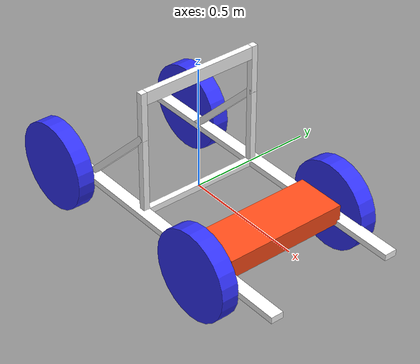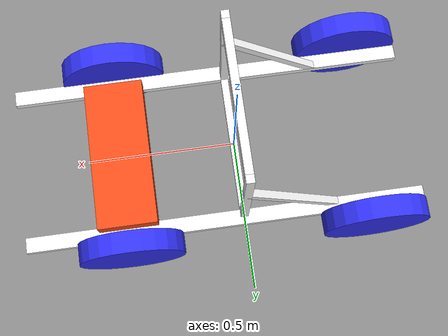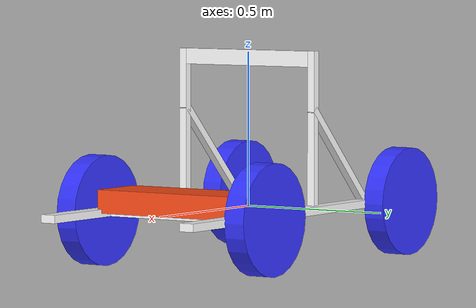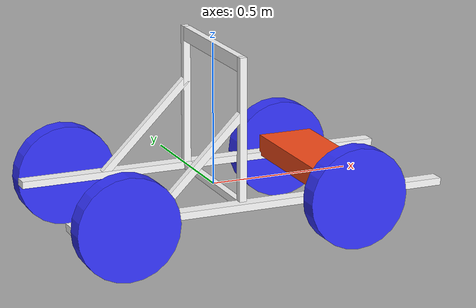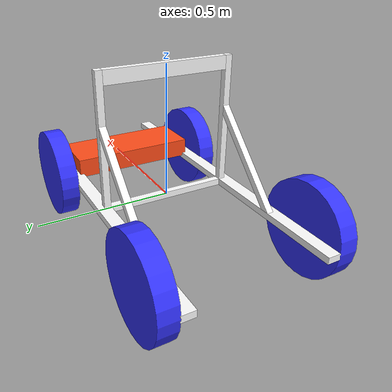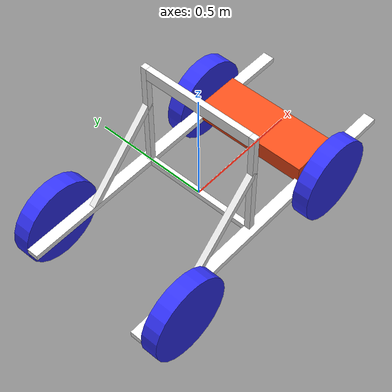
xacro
<?xml version="1.0"?>
<robot xmlns:xacro="http://www.ros.org/wiki/xacro" >

    <xacro:include filename="inertial_macros.xacro"/>

    <xacro:property name="chassis_length" value="1.3501" />
    <xacro:property name="chassis_to_base_link" value="0.73595" />
    <xacro:property name="profile_height" value="0.0254" />
    <xacro:property name="profile_width" value="0.0254" />
    <xacro:property name="tower_height" value="0.508" />

    <xacro:property name="wheel_radius" value="0.1778" />
    <xacro:property name="wheel_thickness" value="0.07" />
    <xacro:property name="wheel_mass" value="0.05" />

    <xacro:property name="front_wheel_offset_x" value="0.3876" />
    <xacro:property name="back_wheel_offset_x" value="0.437" />

    <xacro:property name="wheel_offset_y" value="0.3182" />
    <xacro:property name="wheel_offset_z" value="0.1778" />
    <xacro:property name="caster_wheel_mass" value="0.01"/>

    <material name="white">
        <color rgba="1 1 1 1" />
    </material>

    <material name="orange">
        <color rgba="1 0.3 0.1 1"/>
    </material>

    <material name="blue">
        <color rgba="0.2 0.2 1 1"/>
    </material>

    <material name="black">
        <color rgba="0 0 0 1"/>
    </material>

    <material name="red">
        <color rgba="1 0 0 1"/>
    </material>

    <!-- BASE LINK -->

    <link name="base_link">

    </link>

    <!-- BASE_FOOTPRINT LINK -->

    <joint name="base_footprint_joint" type="fixed">
    	<parent link="base_link"/>
    	<child link="base_footprint"/>
    	<origin xyz="0 0 0" rpy="0 0 0"/>
    </joint>

    <link name="base_footprint">
    </link>

    <!-- CHASSIS LONG BASE LEFT -->
    <!-- Needs to be 1.35m long, to the left by 0.2604m -->

    <joint name="chassis_base_left" type="fixed">
        <parent link="base_link"/>
        <child link="chassis_base_left"/>
        <origin xyz="${chassis_to_base_link} -0.2604 0"/>
    </joint>

    <link name="chassis_base_left">
        <visual>
            <origin xyz="${-chassis_length/2} 0 0"/>
            <geometry>
                <box size="${chassis_length} 0.0508 ${profile_height}"/>
            </geometry>
            <material name="white"/>
        </visual>
        <collision>
            <origin xyz="${-chassis_length/2} 0 0"/>
            <geometry>
                <box size="${chassis_length} 0.0508 ${profile_height}"/>
            </geometry>
        </collision>
        <xacro:inertial_box mass="0.5" x="${-chassis_length}" y="0.0508" z="${profile_height}">
            <origin xyz="${chassis_length/2} 0 0" rpy="0 0 0"/>
        </xacro:inertial_box>
    </link>

    <gazebo reference="chassis_base_left">
        <material>Gazebo/White</material>
    </gazebo>

    <!-- CHASSIS LONG BASE RIGHT -->
    <!-- Needs to be 1.35m long, to the left by  -->

    <joint name="chassis_base_right" type="fixed">
        <parent link="base_link"/>
        <child link="chassis_base_right"/>
        <origin xyz="${chassis_to_base_link} 0.2604 0"/>
    </joint>

    <link name="chassis_base_right">
        <visual>
            <origin xyz="${-chassis_length/2} 0 0"/>
            <geometry>
                <box size="${chassis_length} 0.0508 ${profile_height}"/>
            </geometry>
            <material name="white"/>
        </visual>
        <collision>
            <origin xyz="${-chassis_length/2} 0 0"/>
            <geometry>
                <box size="${chassis_length} 0.0508 ${profile_height}"/>
            </geometry>
        </collision>
        <xacro:inertial_box mass="0.5" x="${-chassis_length}" y="0.0508" z="${profile_height}">
            <origin xyz="${chassis_length/2} 0 0" rpy="0 0 0"/>
        </xacro:inertial_box>
    </link>

    <gazebo reference="chassis_base_right">
        <material>Gazebo/White</material>
    </gazebo>

    <!-- TOWER BASE -->

    <joint name="tower_base_" type="fixed">
        <parent link="base_link"/>
        <child link="tower_base"/>
        <origin xyz="0 0 0"/>
    </joint>

    <link name="tower_base">
        <visual>
            <origin xyz="0 0 0"/>
            <geometry>
                <box size="${profile_width} 0.4702 ${profile_height}"/>
            </geometry>
            <material name="white"/>
        </visual>
        <collision>
            <origin xyz="0 0 0"/>
            <geometry>
                <box size="${profile_width} 0.4702 ${profile_height}"/>
            </geometry>
        </collision>
        <xacro:inertial_box mass="0.5" x="${profile_width}" y="0.4702" z="${profile_height}">
            <origin xyz="0 0 0" rpy="0 0 0"/>
        </xacro:inertial_box>
    </link>

    <gazebo reference="tower_base">
        <material>Gazebo/White</material>
    </gazebo>

    <!-- TOWER HEIGHT LEFT -->
    <!-- Needs to be 0.510m tall -->

    <joint name="tower_up_left" type="fixed">
        <parent link="base_link"/>
        <child link="tower_up_left"/>
        <origin xyz="0 -0.2478 0"/>
    </joint>

    <link name="tower_up_left">
        <visual>
            <origin xyz="0 0 ${tower_height/2}"/>
            <geometry>
                <box size="${profile_width} ${profile_width} ${tower_height}"/>
            </geometry>
            <material name="white"/>
        </visual>
        <collision>
            <origin xyz="0 0 ${tower_height/2}"/>
            <geometry>
                <box size="${profile_width} ${profile_width} ${tower_height}"/>
            </geometry>
        </collision>
        <xacro:inertial_box mass="0.5" x="${profile_width}" y="${profile_width}" z="${tower_height}">
            <origin xyz="0 0 ${tower_height/2}" rpy="0 0 0"/>
        </xacro:inertial_box>
    </link>

    <gazebo reference="tower_up_left">
        <material>Gazebo/White</material>
    </gazebo>

    <!-- TOWER HEIGHT RIGHT-->
    <!-- Needs to be 0.510m tall -->

    <joint name="tower_up_right" type="fixed">
        <parent link="base_link"/>
        <child link="tower_up_right"/>
        <origin xyz="0 0.2478 0"/>
    </joint>

    <link name="tower_up_right">
        <visual>
            <origin xyz="0 0 ${tower_height/2}"/>
            <geometry>
                <box size="${profile_width} ${profile_width} ${tower_height}"/>
            </geometry>
            <material name="white"/>
        </visual>
        <collision>
            <origin xyz="0 0 ${tower_height/2}"/>
            <geometry>
                <box size="${profile_width} ${profile_width} ${tower_height}"/>
            </geometry>
        </collision>
        <xacro:inertial_box mass="0.5" x="${profile_width}" y="${profile_width}" z="${tower_height}">
            <origin xyz="0 0 ${tower_height/2}" rpy="0 0 0"/>
        </xacro:inertial_box>
    </link>

    <gazebo reference="tower_up_right">
        <material>Gazebo/White</material>
    </gazebo>

    <!-- TOWER TOP -->
    <!-- Needs to be 0.510m tall -->

    <joint name="tower_top" type="fixed">
        <parent link="base_link"/>
        <child link="tower_top"/>
        <origin xyz="0 0 ${tower_height-profile_width}"/>
    </joint>

    <link name="tower_top">
        <visual>
            <origin xyz="0 0 0"/>
            <geometry>
                <box size="${profile_width} 0.4702 ${profile_height*2}"/>
            </geometry>
            <material name="white"/>
        </visual>
        <collision>
            <origin xyz="0 0 0"/>
            <geometry>
                <box size="${profile_width} 0.4702 ${profile_height*2}"/>
            </geometry>
        </collision>
        <xacro:inertial_box mass="0.5" x="${profile_width}" y="0.4702" z="${profile_height*2}">
            <origin xyz="0 0 0" rpy="0 0 0"/>
        </xacro:inertial_box>
    </link>

    <!-- TOWER SUPPORT LEFT -->

    <joint name="tower_support_left" type="fixed">
        <parent link="base_link"/>
        <child link="tower_support_left"/>
        <origin xyz="-0.15635 -0.2478 0.160" rpy="0 ${-pi/4} 0"/>
        <axis xyz="1 0 0"/>
    </joint>

    <link name="tower_support_left">
        <visual>
            <origin xyz="0 0 0"/>
            <geometry>
                <box size="0.4572 ${profile_width} ${profile_height}"/>
            </geometry>
            <material name="white"/>
        </visual>
        <collision>
            <origin xyz="0 0 0"/>
            <geometry>
                <box size="0.4572 ${profile_width} ${profile_height}"/>
            </geometry>
        </collision>
        <xacro:inertial_box mass="0.5" x="0.4572" y="${profile_width}" z="${profile_height}">
            <origin xyz="0 0 0" rpy="0 0 0"/>
        </xacro:inertial_box>
    </link>

    <gazebo reference="tower_support_left">
        <material>Gazebo/White</material>
    </gazebo>

    <!-- TOWER SUPPORT RIGHT -->

    <joint name="tower_support_right" type="fixed">
        <parent link="base_link"/>
        <child link="tower_support_right"/>
        <origin xyz="-0.15635 0.2478 0.160" rpy="0 ${-pi/4} 0"/>
        <axis xyz="1 0 0"/>
    </joint>

    <link name="tower_support_right">
        <visual>
            <origin xyz="0 0 0"/>
            <geometry>
                <box size="0.4572 ${profile_width} ${profile_height}"/>
            </geometry>
            <material name="white"/>
        </visual>
        <collision>
            <origin xyz="0 0 0"/>
            <geometry>
                <box size="0.4572 ${profile_width} ${profile_height}"/>
            </geometry>
        </collision>
        <xacro:inertial_box mass="0.5" x="0.4572" y="${profile_width}" z="${profile_height}">
            <origin xyz="0 0 0" rpy="0 0 0"/>
        </xacro:inertial_box>
    </link>

    <gazebo reference="tower_support_right">
        <material>Gazebo/White</material>
    </gazebo>

    <!-- MOTOR BASE FRONT -->

    <joint name="motor_base_front" type="fixed">
        <parent link="base_link"/>
        <child link="motor_base_front"/>
        <origin xyz="0.426 0 0"/>
    </joint>

    <link name="motor_base_front">
        <visual>
            <origin xyz="0 0 0"/>
            <geometry>
                <box size="${profile_width} 0.4702 ${profile_height}"/>
            </geometry>
            <material name="white"/>
        </visual>
        <collision>
            <origin xyz="0 0 0"/>
            <geometry>
                <box size="${profile_width} 0.4702 ${profile_height}"/>
            </geometry>
        </collision>
        <xacro:inertial_box mass="0.1" x="${profile_width}" y="0.4702" z="${profile_height}">
            <origin xyz="0 0 0" rpy="0 0 0"/>
        </xacro:inertial_box>
    </link>

    <gazebo reference="motor_base_front">
        <material>Gazebo/White</material>
    </gazebo>

    <!-- MOTOR BASE BACK -->

    <joint name="motor_base_back" type="fixed">
        <parent link="base_link"/>
        <child link="motor_base_back"/>
        <origin xyz="0.35 0 0"/>
    </joint>

    <link name="motor_base_back">
        <visual>
            <origin xyz="0 0 0"/>
            <geometry>
                <box size="${profile_width} 0.4702 ${profile_height}"/>
            </geometry>
            <material name="white"/>
        </visual>
        <collision>
            <origin xyz="0 0 0"/>
            <geometry>
                <box size="${profile_width} 0.4702 ${profile_height}"/>
            </geometry>
        </collision>
        <xacro:inertial_box mass="0.1" x="${profile_width}" y="0.4702" z="${profile_height}">
            <origin xyz="0 0 0" rpy="0 0 0"/>
        </xacro:inertial_box>
    </link>

    <gazebo reference="motor_base_back">
        <material>Gazebo/White</material>
    </gazebo>

    <!-- MOTOR AND GEARBOX LINK -->

    <joint name="motor_joint" type="fixed">
        <parent link="base_link"/>
        <child link="motor"/>
        <origin xyz="0.3879 0 0"/>
    </joint>

    <link name="motor">
        <visual>
            <origin xyz="0 0 0.0375"/>
            <geometry>
                <box size="0.2 0.5 0.075"/>
            </geometry>
            <material name="orange"/>
        </visual>
        <collision>
            <origin xyz="0 0 0.0375"/>
            <geometry>
                <box size="0.2 0.5 0.075"/>
            </geometry>
        </collision>
        <xacro:inertial_box mass="0.01" x="0.2" y="0.5" z="0.075">
            <origin xyz="0 0 0.0375" rpy="0 0 0"/>
        </xacro:inertial_box>
    </link>

    <gazebo reference="motor">
        <material>Gazebo/Orange</material>
    </gazebo>

    <!-- FRONT LEFT WHEEL LINK -->

    <joint name="left_wheel_joint" type="continuous">
        <parent link="base_link"/>
        <child link="left_wheel"/>
        <origin xyz="${front_wheel_offset_x} -${wheel_offset_y} 0" rpy="-${pi/2} 0 0" />
        <axis xyz="0 0 1"/>
    </joint>

    <link name="left_wheel">
        <visual>
            <geometry>
                <cylinder radius="${wheel_radius}" length="${wheel_thickness}"/>
            </geometry>
            <material name="blue"/>
        </visual>
        <collision>
            <geometry>
                <sphere radius="${wheel_radius}"/>
            </geometry>
        </collision>
        <xacro:inertial_cylinder mass="${wheel_mass}" length="${wheel_thickness}" radius="${wheel_radius}">
            <origin xyz="0 0 0" rpy="0 0 0"/>
        </xacro:inertial_cylinder>
    </link>

    <gazebo reference="left_wheel">
        <material>Gazebo/Blue</material>
    </gazebo>

    <!-- FRONT RIGHT WHEEL LINK -->

    <joint name="right_wheel_joint" type="continuous">
        <parent link="base_link"/>
        <child link="right_wheel"/>
        <origin xyz="${front_wheel_offset_x} ${wheel_offset_y} 0" rpy="${pi/2} 0 0" />
        <axis xyz="0 0 -1"/>
    </joint>

    <link name="right_wheel">
        <visual>
            <geometry>
                <cylinder radius="${wheel_radius}" length="${wheel_thickness}"/>
            </geometry>
            <material name="blue"/>
        </visual>
        <collision>
            <geometry>
                <sphere radius="${wheel_radius}"/>
            </geometry>
        </collision>
        <xacro:inertial_cylinder mass="${wheel_mass}" length="${wheel_thickness}" radius="${wheel_radius}">
            <origin xyz="0 0 0" rpy="0 0 0"/>
        </xacro:inertial_cylinder>
    </link>

    <gazebo reference="right_wheel">
        <material>Gazebo/Blue</material>
    </gazebo>

    <!-- BACK LEFT WHEEL LINK -->

    <joint name="back_left_wheel_joint" type="fixed">
        <parent link="base_link"/>
        <child link="back_left_wheel"/>
        <origin xyz="-${back_wheel_offset_x} -${wheel_offset_y} 0" rpy="-${pi/2} 0 0" />
        <axis xyz="0 0 1"/>
    </joint>

    <link name="back_left_wheel">
        <visual>
            <geometry>
                <cylinder radius="${wheel_radius}" length="${wheel_thickness}"/>
            </geometry>
            <material name="blue"/>
        </visual>
        <collision>
            <geometry>
                <sphere radius="${wheel_radius}"/>
            </geometry>
        </collision>
        <xacro:inertial_cylinder mass="${caster_wheel_mass}" length="${wheel_thickness}" radius="${wheel_radius}">
            <origin xyz="0 0 0" rpy="0 0 0"/>
        </xacro:inertial_cylinder>
    </link>

    <gazebo reference="back_left_wheel">
        <material>Gazebo/Blue</material>
        <mu1 value="0.001"/>
        <mu2 value="0.001"/>
    </gazebo>

    <!-- BACK RIGHT WHEEL LINK -->

    <joint name="back_right_wheel_joint" type="fixed">
        <parent link="base_link"/>
        <child link="back_right_wheel"/>
        <origin xyz="-${back_wheel_offset_x} ${wheel_offset_y} 0" rpy="${pi/2} 0 0" />
        <axis xyz="0 0 -1"/>
    </joint>

    <link name="back_right_wheel">
        <visual>
            <geometry>
                <cylinder radius="${wheel_radius}" length="${wheel_thickness}"/>
            </geometry>
            <material name="blue"/>
        </visual>
        <collision>
            <geometry>
                <sphere radius="${wheel_radius}"/>
            </geometry>
        </collision>
        <xacro:inertial_cylinder mass="${caster_wheel_mass}" length="${wheel_thickness}" radius="${wheel_radius}">
            <origin xyz="0 0 0" rpy="0 0 0"/>
        </xacro:inertial_cylinder>
    </link>

    <gazebo reference="back_right_wheel">
        <material>Gazebo/Blue</material>
        <mu1 value="0.001"/>
        <mu2 value="0.001"/>
    </gazebo>

</robot>
